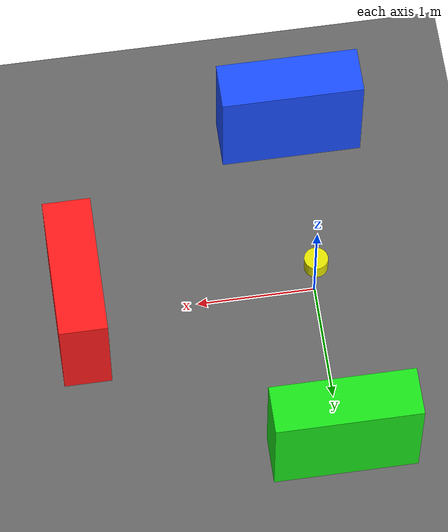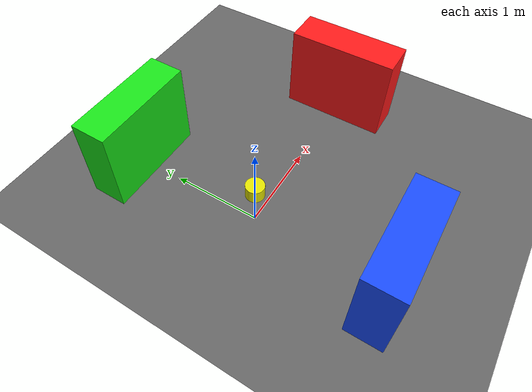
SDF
<?xml version="1.0" ?>
<sdf version="1.9">
  <world name="cpu_lidar_world">

    <physics name="1ms" type="ignored">
      <max_step_size>0.001</max_step_size>
      <real_time_factor>1.0</real_time_factor>
    </physics>

    <!-- Core physics & user command systems -->
    <plugin filename="gz-sim-physics-system" name="gz::sim::systems::Physics"/>
    <plugin filename="gz-sim-user-commands-system" name="gz::sim::systems::UserCommands"/>
    <plugin filename="gz-sim-scene-broadcaster-system" name="gz::sim::systems::SceneBroadcaster"/>

    <!-- Standard sensors system (handles CPU lidar raycasting) -->
    <plugin filename="gz-sim-sensors-system" name="gz::sim::systems::Sensors"/>

    <!-- GUI Configuration -->
    <gui fullscreen="0">
      <plugin filename="MinimalScene" name="3D View">
        <gz-gui>
          <title>3D View</title>
          <property type="bool" key="showTitleBar">false</property>
          <property type="string" key="state">docked</property>
        </gz-gui>
        <scene>scene</scene>
        <camera_pose>-3.5 0.0 3.0 0 0.55 0.0</camera_pose>
      </plugin>
      <plugin filename="GzSceneManager" name="Scene Manager"/>
      <plugin filename="InteractiveViewControl" name="Interactive view control"/>
      <plugin filename="WorldControl" name="World control"/>
      <plugin filename="WorldStats" name="World stats"/>
      <plugin filename="VisualizeLidar" name="Visualize Lidar"/>
    </gui>

    <light type="directional" name="sun">
      <cast_shadows>true</cast_shadows>
      <pose>0 0 10 0 0 0</pose>
      <diffuse>0.8 0.8 0.8 1</diffuse>
      <specular>0.2 0.2 0.2 1</specular>
      <direction>-0.5 0.1 -0.9</direction>
    </light>

    <!-- Ground Plane -->
    <model name="ground_plane">
      <static>true</static>
      <link name="link">
        <collision name="collision">
          <geometry>
            <plane><normal>0 0 1</normal><size>20 20</size></plane>
          </geometry>
        </collision>
        <visual name="visual">
          <geometry>
            <plane><normal>0 0 1</normal><size>20 20</size></plane>
          </geometry>
          <material>
            <ambient>0.4 0.4 0.4 1</ambient>
            <diffuse>0.4 0.4 0.4 1</diffuse>
          </material>
        </visual>
      </link>
    </model>

    <!-- Obstacle Directly in Front (+X, 2.0m away) -->
    <model name="front_obstacle">
      <static>true</static>
      <pose>2.0 0.0 0.5 0 0 0</pose>
      <link name="link">
        <collision name="collision">
          <geometry><box><size>0.4 1.2 1.0</size></box></geometry>
        </collision>
        <visual name="visual">
          <geometry><box><size>0.4 1.2 1.0</size></box></geometry>
          <material>
            <ambient>1.0 0.1 0.1 1</ambient>
            <diffuse>1.0 0.1 0.1 1</diffuse>
          </material>
        </visual>
      </link>
    </model>

    <!-- Obstacle to the Left (+Y, 1.5m away) -->
    <model name="left_obstacle">
      <static>true</static>
      <pose>0.0 1.5 0.5 0 0 0</pose>
      <link name="link">
        <collision name="collision">
          <geometry><box><size>1.2 0.4 1.0</size></box></geometry>
        </collision>
        <visual name="visual">
          <geometry><box><size>1.2 0.4 1.0</size></box></geometry>
          <material>
            <ambient>0.1 0.9 0.1 1</ambient>
            <diffuse>0.1 0.9 0.1 1</diffuse>
          </material>
        </visual>
      </link>
    </model>

    <!-- Obstacle to the Right (-Y, 1.5m away) -->
    <model name="right_obstacle">
      <static>true</static>
      <pose>0.0 -1.5 0.5 0 0 0</pose>
      <link name="link">
        <collision name="collision">
          <geometry><box><size>1.2 0.4 1.0</size></box></geometry>
        </collision>
        <visual name="visual">
          <geometry><box><size>1.2 0.4 1.0</size></box></geometry>
          <material>
            <ambient>0.1 0.3 1.0 1</ambient>
            <diffuse>0.1 0.3 1.0 1</diffuse>
          </material>
        </visual>
      </link>
    </model>

    <!-- CPU-Based 2D LiDAR Model -->
    <model name="cpu_lidar_sensor">
      <static>true</static>
      <pose>0 0 0.5 0 0 0</pose>

      <link name="lidar_link">
        <visual name="visual">
          <geometry>
            <cylinder><radius>0.1</radius><length>0.15</length></cylinder>
          </geometry>
          <material>
            <ambient>0.9 0.9 0.0 1</ambient>
            <diffuse>0.9 0.9 0.0 1</diffuse>
          </material>
        </visual>

        <!-- Changed type to "lidar" (CPU raycasting) -->
        <sensor name="cpu_lidar" type="lidar">
          <pose>0 0 0 0 0 0</pose>
          <topic>/scan</topic>
          <update_rate>20</update_rate>
          <ray>
            <scan>
              <horizontal>
                <samples>360</samples>
                <resolution>1</resolution>
                <min_angle>-3.14159</min_angle>
                <max_angle>3.14159</max_angle>
              </horizontal>
              <vertical>
                <samples>1</samples>
                <resolution>1</resolution>
                <min_angle>0</min_angle>
                <max_angle>0</max_angle>
              </vertical>
            </scan>
            <range>
              <min>0.1</min>
              <max>10.0</max>
              <resolution>0.01</resolution>
            </range>
          </ray>
          <always_on>1</always_on>
          <visualize>true</visualize>
        </sensor>
      </link>
    </model>

  </world>
</sdf>
